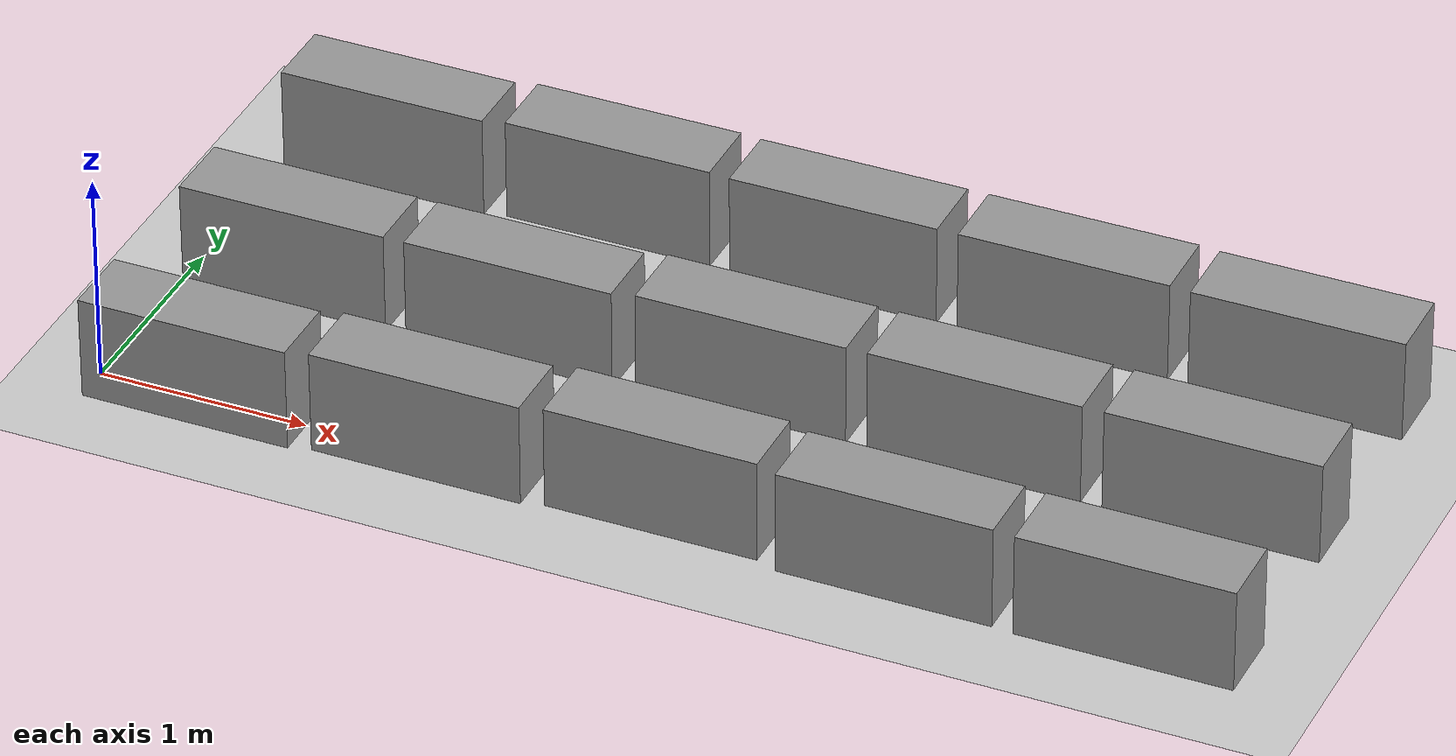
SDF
<sdf version="1.7">
 <world name="default">
  <model name="ground_plane">
   <static>1</static>
   <link name="link">
    <collision name="collision">
     <geometry><plane><normal>0 0 1</normal><size>100 100</size></plane></geometry>
     <surface>
      <contact><collide_bitmask>65535</collide_bitmask></contact>
      <friction><ode><mu>100</mu><mu2>50</mu2></ode></friction>
     </surface>
    </collision>
    <visual name="visual">
     <cast_shadows>0</cast_shadows>
     <geometry><plane><normal>0 0 1</normal><size>100 100</size></plane></geometry>
     <material>
      <script><uri>file://media/materials/scripts/gazebo.material</uri><name>Gazebo/Grey</name></script>
     </material>
    </visual>
   </link>
  </model>
  <model name="obs_solarpanel_raw_0_6">
   <link name="link_0">
    <inertial>
     <mass>1</mass>
     <inertia>
      <ixx>0.166667</ixx>
      <ixy>0</ixy>
      <ixz>0</ixz>
      <iyy>0.166667</iyy>
      <iyz>0</iyz>
      <izz>0.166667</izz>
     </inertia>
    </inertial>
    <visual name="visual">
     <geometry><box><size>1 0.35 0.5</size></box></geometry>
     <material>
      <lighting>1</lighting>
      <script><uri>file://media/materials/scripts/gazebo.material</uri><name>Gazebo/Grey</name></script>
      <shader type="pixel"><normal_map>__default__</normal_map></shader>
      <ambient>0.3 0.3 0.3 1</ambient>
      <diffuse>0.7 0.7 0.7 1</diffuse>
      <specular>0.01 0.01 0.01 1</specular>
      <emissive>0 0 0 1</emissive>
     </material>
    </visual>
    <collision name="collision">
     <geometry><box><size>1 0.32 0.5</size></box></geometry>
     <surface>
      <friction>
       <ode><mu>10</mu><mu2>10</mu2><fdir1>0 0 0</fdir1><slip1>0</slip1><slip2>0</slip2></ode>
       <torsional>
        <coefficient>1</coefficient>
        <patch_radius>0</patch_radius>
        <surface_radius>0</surface_radius>
        <use_patch_radius>1</use_patch_radius>
        <ode><slip>0</slip></ode>
       </torsional>
      </friction>
      <bounce><restitution_coefficient>0</restitution_coefficient><threshold>1e+06</threshold></bounce>
      <contact>
       <collide_without_contact>0</collide_without_contact>
       <collide_without_contact_bitmask>1</collide_without_contact_bitmask>
       <collide_bitmask>1</collide_bitmask>
       <ode>
        <soft_cfm>0</soft_cfm>
        <soft_erp>0.2</soft_erp>
        <kp>1e+13</kp>
        <kd>1</kd>
        <max_vel>0</max_vel>
        <min_depth>0</min_depth>
       </ode>
       <bullet>
        <split_impulse>1</split_impulse>
        <split_impulse_penetration_threshold>-0.01</split_impulse_penetration_threshold>
        <soft_cfm>0</soft_cfm>
        <soft_erp>0.2</soft_erp>
        <kp>1e+13</kp>
        <kd>1</kd>
       </bullet>
      </contact>
     </surface>
    </collision>
   </link>
   <static>1</static>
   <pose>0.5 1.99 0.25 0 -0 0</pose>
  </model>
  <model name="obs_solarpanel_raw_0_7">
   <link name="link_0">
    <inertial>
     <mass>1</mass>
     <inertia>
      <ixx>0.166667</ixx>
      <ixy>0</ixy>
      <ixz>0</ixz>
      <iyy>0.166667</iyy>
      <iyz>0</iyz>
      <izz>0.166667</izz>
     </inertia>
    </inertial>
    <visual name="visual">
     <geometry><box><size>1 0.35 0.5</size></box></geometry>
     <material>
      <lighting>1</lighting>
      <script><uri>file://media/materials/scripts/gazebo.material</uri><name>Gazebo/Grey</name></script>
      <shader type="pixel"><normal_map>__default__</normal_map></shader>
      <ambient>0.3 0.3 0.3 1</ambient>
      <diffuse>0.7 0.7 0.7 1</diffuse>
      <specular>0.01 0.01 0.01 1</specular>
      <emissive>0 0 0 1</emissive>
     </material>
    </visual>
    <collision name="collision">
     <geometry><box><size>1 0.32 0.5</size></box></geometry>
     <surface>
      <friction>
       <ode><mu>10</mu><mu2>10</mu2><fdir1>0 0 0</fdir1><slip1>0</slip1><slip2>0</slip2></ode>
       <torsional>
        <coefficient>1</coefficient>
        <patch_radius>0</patch_radius>
        <surface_radius>0</surface_radius>
        <use_patch_radius>1</use_patch_radius>
        <ode><slip>0</slip></ode>
       </torsional>
      </friction>
      <bounce><restitution_coefficient>0</restitution_coefficient><threshold>1e+06</threshold></bounce>
      <contact>
       <collide_without_contact>0</collide_without_contact>
       <collide_without_contact_bitmask>1</collide_without_contact_bitmask>
       <collide_bitmask>1</collide_bitmask>
       <ode>
        <soft_cfm>0</soft_cfm>
        <soft_erp>0.2</soft_erp>
        <kp>1e+13</kp>
        <kd>1</kd>
        <max_vel>0</max_vel>
        <min_depth>0</min_depth>
       </ode>
       <bullet>
        <split_impulse>1</split_impulse>
        <split_impulse_penetration_threshold>-0.01</split_impulse_penetration_threshold>
        <soft_cfm>0</soft_cfm>
        <soft_erp>0.2</soft_erp>
        <kp>1e+13</kp>
        <kd>1</kd>
       </bullet>
      </contact>
     </surface>
    </collision>
   </link>
   <static>1</static>
   <pose>1.6 2.02 0.25 0 -0 0</pose>
  </model>
  <model name="obs_solarpanel_raw_0_8">
   <link name="link_0">
    <inertial>
     <mass>1</mass>
     <inertia>
      <ixx>0.166667</ixx>
      <ixy>0</ixy>
      <ixz>0</ixz>
      <iyy>0.166667</iyy>
      <iyz>0</iyz>
      <izz>0.166667</izz>
     </inertia>
    </inertial>
    <visual name="visual">
     <geometry><box><size>1 0.35 0.5</size></box></geometry>
     <material>
      <lighting>1</lighting>
      <script><uri>file://media/materials/scripts/gazebo.material</uri><name>Gazebo/Grey</name></script>
      <shader type="pixel"><normal_map>__default__</normal_map></shader>
      <ambient>0.3 0.3 0.3 1</ambient>
      <diffuse>0.7 0.7 0.7 1</diffuse>
      <specular>0.01 0.01 0.01 1</specular>
      <emissive>0 0 0 1</emissive>
     </material>
    </visual>
    <collision name="collision">
     <geometry><box><size>1 0.32 0.5</size></box></geometry>
     <surface>
      <friction>
       <ode><mu>10</mu><mu2>10</mu2><fdir1>0 0 0</fdir1><slip1>0</slip1><slip2>0</slip2></ode>
       <torsional>
        <coefficient>1</coefficient>
        <patch_radius>0</patch_radius>
        <surface_radius>0</surface_radius>
        <use_patch_radius>1</use_patch_radius>
        <ode><slip>0</slip></ode>
       </torsional>
      </friction>
      <bounce><restitution_coefficient>0</restitution_coefficient><threshold>1e+06</threshold></bounce>
      <contact>
       <collide_without_contact>0</collide_without_contact>
       <collide_without_contact_bitmask>1</collide_without_contact_bitmask>
       <collide_bitmask>1</collide_bitmask>
       <ode>
        <soft_cfm>0</soft_cfm>
        <soft_erp>0.2</soft_erp>
        <kp>1e+13</kp>
        <kd>1</kd>
        <max_vel>0</max_vel>
        <min_depth>0</min_depth>
       </ode>
       <bullet>
        <split_impulse>1</split_impulse>
        <split_impulse_penetration_threshold>-0.01</split_impulse_penetration_threshold>
        <soft_cfm>0</soft_cfm>
        <soft_erp>0.2</soft_erp>
        <kp>1e+13</kp>
        <kd>1</kd>
       </bullet>
      </contact>
     </surface>
    </collision>
   </link>
   <static>1</static>
   <pose>2.7 2.01 0.25 0 -0 0</pose>
  </model>
  <model name="obs_solarpanel_raw_0_9">
   <link name="link_0">
    <inertial>
     <mass>1</mass>
     <inertia>
      <ixx>0.166667</ixx>
      <ixy>0</ixy>
      <ixz>0</ixz>
      <iyy>0.166667</iyy>
      <iyz>0</iyz>
      <izz>0.166667</izz>
     </inertia>
    </inertial>
    <visual name="visual">
     <geometry><box><size>1 0.35 0.5</size></box></geometry>
     <material>
      <lighting>1</lighting>
      <script><uri>file://media/materials/scripts/gazebo.material</uri><name>Gazebo/Grey</name></script>
      <shader type="pixel"><normal_map>__default__</normal_map></shader>
      <ambient>0.3 0.3 0.3 1</ambient>
      <diffuse>0.7 0.7 0.7 1</diffuse>
      <specular>0.01 0.01 0.01 1</specular>
      <emissive>0 0 0 1</emissive>
     </material>
    </visual>
    <collision name="collision">
     <geometry><box><size>1 0.32 0.5</size></box></geometry>
     <surface>
      <friction>
       <ode><mu>10</mu><mu2>10</mu2><fdir1>0 0 0</fdir1><slip1>0</slip1><slip2>0</slip2></ode>
       <torsional>
        <coefficient>1</coefficient>
        <patch_radius>0</patch_radius>
        <surface_radius>0</surface_radius>
        <use_patch_radius>1</use_patch_radius>
        <ode><slip>0</slip></ode>
       </torsional>
      </friction>
      <bounce><restitution_coefficient>0</restitution_coefficient><threshold>1e+06</threshold></bounce>
      <contact>
       <collide_without_contact>0</collide_without_contact>
       <collide_without_contact_bitmask>1</collide_without_contact_bitmask>
       <collide_bitmask>1</collide_bitmask>
       <ode>
        <soft_cfm>0</soft_cfm>
        <soft_erp>0.2</soft_erp>
        <kp>1e+13</kp>
        <kd>1</kd>
        <max_vel>0</max_vel>
        <min_depth>0</min_depth>
       </ode>
       <bullet>
        <split_impulse>1</split_impulse>
        <split_impulse_penetration_threshold>-0.01</split_impulse_penetration_threshold>
        <soft_cfm>0</soft_cfm>
        <soft_erp>0.2</soft_erp>
        <kp>1e+13</kp>
        <kd>1</kd>
       </bullet>
      </contact>
     </surface>
    </collision>
   </link>
   <static>1</static>
   <pose>3.8 2.01 0.25 0 -0 0</pose>
  </model>
  <model name="obs_solarpanel_raw_0_10">
   <link name="link_0">
    <inertial>
     <mass>1</mass>
     <inertia>
      <ixx>0.166667</ixx>
      <ixy>0</ixy>
      <ixz>0</ixz>
      <iyy>0.166667</iyy>
      <iyz>0</iyz>
      <izz>0.166667</izz>
     </inertia>
    </inertial>
    <visual name="visual">
     <geometry><box><size>1 0.35 0.5</size></box></geometry>
     <material>
      <lighting>1</lighting>
      <script><uri>file://media/materials/scripts/gazebo.material</uri><name>Gazebo/Grey</name></script>
      <shader type="pixel"><normal_map>__default__</normal_map></shader>
      <ambient>0.3 0.3 0.3 1</ambient>
      <diffuse>0.7 0.7 0.7 1</diffuse>
      <specular>0.01 0.01 0.01 1</specular>
      <emissive>0 0 0 1</emissive>
     </material>
    </visual>
    <collision name="collision">
     <geometry><box><size>1 0.32 0.5</size></box></geometry>
     <surface>
      <friction>
       <ode><mu>10</mu><mu2>10</mu2><fdir1>0 0 0</fdir1><slip1>0</slip1><slip2>0</slip2></ode>
       <torsional>
        <coefficient>1</coefficient>
        <patch_radius>0</patch_radius>
        <surface_radius>0</surface_radius>
        <use_patch_radius>1</use_patch_radius>
        <ode><slip>0</slip></ode>
       </torsional>
      </friction>
      <bounce><restitution_coefficient>0</restitution_coefficient><threshold>1e+06</threshold></bounce>
      <contact>
       <collide_without_contact>0</collide_without_contact>
       <collide_without_contact_bitmask>1</collide_without_contact_bitmask>
       <collide_bitmask>1</collide_bitmask>
       <ode>
        <soft_cfm>0</soft_cfm>
        <soft_erp>0.2</soft_erp>
        <kp>1e+13</kp>
        <kd>1</kd>
        <max_vel>0</max_vel>
        <min_depth>0</min_depth>
       </ode>
       <bullet>
        <split_impulse>1</split_impulse>
        <split_impulse_penetration_threshold>-0.01</split_impulse_penetration_threshold>
        <soft_cfm>0</soft_cfm>
        <soft_erp>0.2</soft_erp>
        <kp>1e+13</kp>
        <kd>1</kd>
       </bullet>
      </contact>
     </surface>
    </collision>
   </link>
   <static>1</static>
   <pose>4.9 2 0.25 0 -0 0</pose>
  </model>
  <model name="obs_solarpanel_raw_1_6">
   <link name="link_0">
    <inertial>
     <mass>1</mass>
     <inertia>
      <ixx>0.166667</ixx>
      <ixy>0</ixy>
      <ixz>0</ixz>
      <iyy>0.166667</iyy>
      <iyz>0</iyz>
      <izz>0.166667</izz>
     </inertia>
    </inertial>
    <visual name="visual">
     <geometry><box><size>1 0.35 0.5</size></box></geometry>
     <material>
      <lighting>1</lighting>
      <script><uri>file://media/materials/scripts/gazebo.material</uri><name>Gazebo/Grey</name></script>
      <shader type="pixel"><normal_map>__default__</normal_map></shader>
      <ambient>0.3 0.3 0.3 1</ambient>
      <diffuse>0.7 0.7 0.7 1</diffuse>
      <specular>0.01 0.01 0.01 1</specular>
      <emissive>0 0 0 1</emissive>
     </material>
    </visual>
    <collision name="collision">
     <geometry><box><size>1 0.32 0.5</size></box></geometry>
     <surface>
      <friction>
       <ode><mu>10</mu><mu2>10</mu2><fdir1>0 0 0</fdir1><slip1>0</slip1><slip2>0</slip2></ode>
       <torsional>
        <coefficient>1</coefficient>
        <patch_radius>0</patch_radius>
        <surface_radius>0</surface_radius>
        <use_patch_radius>1</use_patch_radius>
        <ode><slip>0</slip></ode>
       </torsional>
      </friction>
      <bounce><restitution_coefficient>0</restitution_coefficient><threshold>1e+06</threshold></bounce>
      <contact>
       <collide_without_contact>0</collide_without_contact>
       <collide_without_contact_bitmask>1</collide_without_contact_bitmask>
       <collide_bitmask>1</collide_bitmask>
       <ode>
        <soft_cfm>0</soft_cfm>
        <soft_erp>0.2</soft_erp>
        <kp>1e+13</kp>
        <kd>1</kd>
        <max_vel>0</max_vel>
        <min_depth>0</min_depth>
       </ode>
       <bullet>
        <split_impulse>1</split_impulse>
        <split_impulse_penetration_threshold>-0.01</split_impulse_penetration_threshold>
        <soft_cfm>0</soft_cfm>
        <soft_erp>0.2</soft_erp>
        <kp>1e+13</kp>
        <kd>1</kd>
       </bullet>
      </contact>
     </surface>
    </collision>
   </link>
   <static>1</static>
   <pose>0.5 0.97 0.25 0 -0 0</pose>
  </model>
  <model name="obs_solarpanel_raw_1_7">
   <link name="link_0">
    <inertial>
     <mass>1</mass>
     <inertia>
      <ixx>0.166667</ixx>
      <ixy>0</ixy>
      <ixz>0</ixz>
      <iyy>0.166667</iyy>
      <iyz>0</iyz>
      <izz>0.166667</izz>
     </inertia>
    </inertial>
    <visual name="visual">
     <geometry><box><size>1 0.35 0.5</size></box></geometry>
     <material>
      <lighting>1</lighting>
      <script><uri>file://media/materials/scripts/gazebo.material</uri><name>Gazebo/Grey</name></script>
      <shader type="pixel"><normal_map>__default__</normal_map></shader>
      <ambient>0.3 0.3 0.3 1</ambient>
      <diffuse>0.7 0.7 0.7 1</diffuse>
      <specular>0.01 0.01 0.01 1</specular>
      <emissive>0 0 0 1</emissive>
     </material>
    </visual>
    <collision name="collision">
     <geometry><box><size>1 0.32 0.5</size></box></geometry>
     <surface>
      <friction>
       <ode><mu>10</mu><mu2>10</mu2><fdir1>0 0 0</fdir1><slip1>0</slip1><slip2>0</slip2></ode>
       <torsional>
        <coefficient>1</coefficient>
        <patch_radius>0</patch_radius>
        <surface_radius>0</surface_radius>
        <use_patch_radius>1</use_patch_radius>
        <ode><slip>0</slip></ode>
       </torsional>
      </friction>
      <bounce><restitution_coefficient>0</restitution_coefficient><threshold>1e+06</threshold></bounce>
      <contact>
       <collide_without_contact>0</collide_without_contact>
       <collide_without_contact_bitmask>1</collide_without_contact_bitmask>
       <collide_bitmask>1</collide_bitmask>
       <ode>
        <soft_cfm>0</soft_cfm>
        <soft_erp>0.2</soft_erp>
        <kp>1e+13</kp>
        <kd>1</kd>
        <max_vel>0</max_vel>
        <min_depth>0</min_depth>
       </ode>
       <bullet>
        <split_impulse>1</split_impulse>
        <split_impulse_penetration_threshold>-0.01</split_impulse_penetration_threshold>
        <soft_cfm>0</soft_cfm>
        <soft_erp>0.2</soft_erp>
        <kp>1e+13</kp>
        <kd>1</kd>
       </bullet>
      </contact>
     </surface>
    </collision>
   </link>
   <static>1</static>
   <pose>1.6 0.97 0.25 0 -0 0</pose>
  </model>
  <model name="obs_solarpanel_raw_1_8">
   <link name="link_0">
    <inertial>
     <mass>1</mass>
     <inertia>
      <ixx>0.166667</ixx>
      <ixy>0</ixy>
      <ixz>0</ixz>
      <iyy>0.166667</iyy>
      <iyz>0</iyz>
      <izz>0.166667</izz>
     </inertia>
    </inertial>
    <visual name="visual">
     <geometry><box><size>1 0.35 0.5</size></box></geometry>
     <material>
      <lighting>1</lighting>
      <script><uri>file://media/materials/scripts/gazebo.material</uri><name>Gazebo/Grey</name></script>
      <shader type="pixel"><normal_map>__default__</normal_map></shader>
      <ambient>0.3 0.3 0.3 1</ambient>
      <diffuse>0.7 0.7 0.7 1</diffuse>
      <specular>0.01 0.01 0.01 1</specular>
      <emissive>0 0 0 1</emissive>
     </material>
    </visual>
    <collision name="collision">
     <geometry><box><size>1 0.32 0.5</size></box></geometry>
     <surface>
      <friction>
       <ode><mu>10</mu><mu2>10</mu2><fdir1>0 0 0</fdir1><slip1>0</slip1><slip2>0</slip2></ode>
       <torsional>
        <coefficient>1</coefficient>
        <patch_radius>0</patch_radius>
        <surface_radius>0</surface_radius>
        <use_patch_radius>1</use_patch_radius>
        <ode><slip>0</slip></ode>
       </torsional>
      </friction>
      <bounce><restitution_coefficient>0</restitution_coefficient><threshold>1e+06</threshold></bounce>
      <contact>
       <collide_without_contact>0</collide_without_contact>
       <collide_without_contact_bitmask>1</collide_without_contact_bitmask>
       <collide_bitmask>1</collide_bitmask>
       <ode>
        <soft_cfm>0</soft_cfm>
        <soft_erp>0.2</soft_erp>
        <kp>1e+13</kp>
        <kd>1</kd>
        <max_vel>0</max_vel>
        <min_depth>0</min_depth>
       </ode>
       <bullet>
        <split_impulse>1</split_impulse>
        <split_impulse_penetration_threshold>-0.01</split_impulse_penetration_threshold>
        <soft_cfm>0</soft_cfm>
        <soft_erp>0.2</soft_erp>
        <kp>1e+13</kp>
        <kd>1</kd>
       </bullet>
      </contact>
     </surface>
    </collision>
   </link>
   <static>1</static>
   <pose>2.7 1 0.25 0 -0 0</pose>
  </model>
  <model name="obs_solarpanel_raw_1_9">
   <link name="link_0">
    <inertial>
     <mass>1</mass>
     <inertia>
      <ixx>0.166667</ixx>
      <ixy>0</ixy>
      <ixz>0</ixz>
      <iyy>0.166667</iyy>
      <iyz>0</iyz>
      <izz>0.166667</izz>
     </inertia>
    </inertial>
    <visual name="visual">
     <geometry><box><size>1 0.35 0.5</size></box></geometry>
     <material>
      <lighting>1</lighting>
      <script><uri>file://media/materials/scripts/gazebo.material</uri><name>Gazebo/Grey</name></script>
      <shader type="pixel"><normal_map>__default__</normal_map></shader>
      <ambient>0.3 0.3 0.3 1</ambient>
      <diffuse>0.7 0.7 0.7 1</diffuse>
      <specular>0.01 0.01 0.01 1</specular>
      <emissive>0 0 0 1</emissive>
     </material>
    </visual>
    <collision name="collision">
     <geometry><box><size>1 0.32 0.5</size></box></geometry>
     <surface>
      <friction>
       <ode><mu>10</mu><mu2>10</mu2><fdir1>0 0 0</fdir1><slip1>0</slip1><slip2>0</slip2></ode>
       <torsional>
        <coefficient>1</coefficient>
        <patch_radius>0</patch_radius>
        <surface_radius>0</surface_radius>
        <use_patch_radius>1</use_patch_radius>
        <ode><slip>0</slip></ode>
       </torsional>
      </friction>
      <bounce><restitution_coefficient>0</restitution_coefficient><threshold>1e+06</threshold></bounce>
      <contact>
       <collide_without_contact>0</collide_without_contact>
       <collide_without_contact_bitmask>1</collide_without_contact_bitmask>
       <collide_bitmask>1</collide_bitmask>
       <ode>
        <soft_cfm>0</soft_cfm>
        <soft_erp>0.2</soft_erp>
        <kp>1e+13</kp>
        <kd>1</kd>
        <max_vel>0</max_vel>
        <min_depth>0</min_depth>
       </ode>
       <bullet>
        <split_impulse>1</split_impulse>
        <split_impulse_penetration_threshold>-0.01</split_impulse_penetration_threshold>
        <soft_cfm>0</soft_cfm>
        <soft_erp>0.2</soft_erp>
        <kp>1e+13</kp>
        <kd>1</kd>
       </bullet>
      </contact>
     </surface>
    </collision>
   </link>
   <static>1</static>
   <pose>3.8 1 0.25 0 -0 0</pose>
  </model>
  <model name="obs_solarpanel_raw_1_10">
   <link name="link_0">
    <inertial>
     <mass>1</mass>
     <inertia>
      <ixx>0.166667</ixx>
      <ixy>0</ixy>
      <ixz>0</ixz>
      <iyy>0.166667</iyy>
      <iyz>0</iyz>
      <izz>0.166667</izz>
     </inertia>
    </inertial>
    <visual name="visual">
     <geometry><box><size>1 0.35 0.5</size></box></geometry>
     <material>
      <lighting>1</lighting>
      <script><uri>file://media/materials/scripts/gazebo.material</uri><name>Gazebo/Grey</name></script>
      <shader type="pixel"><normal_map>__default__</normal_map></shader>
      <ambient>0.3 0.3 0.3 1</ambient>
      <diffuse>0.7 0.7 0.7 1</diffuse>
      <specular>0.01 0.01 0.01 1</specular>
      <emissive>0 0 0 1</emissive>
     </material>
    </visual>
    <collision name="collision">
     <geometry><box><size>1 0.32 0.5</size></box></geometry>
     <surface>
      <friction>
       <ode><mu>10</mu><mu2>10</mu2><fdir1>0 0 0</fdir1><slip1>0</slip1><slip2>0</slip2></ode>
       <torsional>
        <coefficient>1</coefficient>
        <patch_radius>0</patch_radius>
        <surface_radius>0</surface_radius>
        <use_patch_radius>1</use_patch_radius>
        <ode><slip>0</slip></ode>
       </torsional>
      </friction>
      <bounce><restitution_coefficient>0</restitution_coefficient><threshold>1e+06</threshold></bounce>
      <contact>
       <collide_without_contact>0</collide_without_contact>
       <collide_without_contact_bitmask>1</collide_without_contact_bitmask>
       <collide_bitmask>1</collide_bitmask>
       <ode>
        <soft_cfm>0</soft_cfm>
        <soft_erp>0.2</soft_erp>
        <kp>1e+13</kp>
        <kd>1</kd>
        <max_vel>0</max_vel>
        <min_depth>0</min_depth>
       </ode>
       <bullet>
        <split_impulse>1</split_impulse>
        <split_impulse_penetration_threshold>-0.01</split_impulse_penetration_threshold>
        <soft_cfm>0</soft_cfm>
        <soft_erp>0.2</soft_erp>
        <kp>1e+13</kp>
        <kd>1</kd>
       </bullet>
      </contact>
     </surface>
    </collision>
   </link>
   <static>1</static>
   <pose>4.9 1 0.25 0 -0 0</pose>
  </model>
  <model name="obs_solarpanel_raw_2_6">
   <link name="link_0">
    <inertial>
     <mass>1</mass>
     <inertia>
      <ixx>0.166667</ixx>
      <ixy>0</ixy>
      <ixz>0</ixz>
      <iyy>0.166667</iyy>
      <iyz>0</iyz>
      <izz>0.166667</izz>
     </inertia>
    </inertial>
    <visual name="visual">
     <geometry><box><size>1 0.35 0.5</size></box></geometry>
     <material>
      <lighting>1</lighting>
      <script><uri>file://media/materials/scripts/gazebo.material</uri><name>Gazebo/Grey</name></script>
      <shader type="pixel"><normal_map>__default__</normal_map></shader>
      <ambient>0.3 0.3 0.3 1</ambient>
      <diffuse>0.7 0.7 0.7 1</diffuse>
      <specular>0.01 0.01 0.01 1</specular>
      <emissive>0 0 0 1</emissive>
     </material>
    </visual>
    <collision name="collision">
     <geometry><box><size>1 0.32 0.5</size></box></geometry>
     <surface>
      <friction>
       <ode><mu>10</mu><mu2>10</mu2><fdir1>0 0 0</fdir1><slip1>0</slip1><slip2>0</slip2></ode>
       <torsional>
        <coefficient>1</coefficient>
        <patch_radius>0</patch_radius>
        <surface_radius>0</surface_radius>
        <use_patch_radius>1</use_patch_radius>
        <ode><slip>0</slip></ode>
       </torsional>
      </friction>
      <bounce><restitution_coefficient>0</restitution_coefficient><threshold>1e+06</threshold></bounce>
      <contact>
       <collide_without_contact>0</collide_without_contact>
       <collide_without_contact_bitmask>1</collide_without_contact_bitmask>
       <collide_bitmask>1</collide_bitmask>
       <ode>
        <soft_cfm>0</soft_cfm>
        <soft_erp>0.2</soft_erp>
        <kp>1e+13</kp>
        <kd>1</kd>
        <max_vel>0</max_vel>
        <min_depth>0</min_depth>
       </ode>
       <bullet>
        <split_impulse>1</split_impulse>
        <split_impulse_penetration_threshold>-0.01</split_impulse_penetration_threshold>
        <soft_cfm>0</soft_cfm>
        <soft_erp>0.2</soft_erp>
        <kp>1e+13</kp>
        <kd>1</kd>
       </bullet>
      </contact>
     </surface>
    </collision>
   </link>
   <static>1</static>
   <pose>0.5 -0.01 0.25 0 -0 0</pose>
  </model>
  <model name="obs_solarpanel_raw_2_7">
   <link name="link_0">
    <inertial>
     <mass>1</mass>
     <inertia>
      <ixx>0.166667</ixx>
      <ixy>0</ixy>
      <ixz>0</ixz>
      <iyy>0.166667</iyy>
      <iyz>0</iyz>
      <izz>0.166667</izz>
     </inertia>
    </inertial>
    <visual name="visual">
     <geometry><box><size>1 0.35 0.5</size></box></geometry>
     <material>
      <lighting>1</lighting>
      <script><uri>file://media/materials/scripts/gazebo.material</uri><name>Gazebo/Grey</name></script>
      <shader type="pixel"><normal_map>__default__</normal_map></shader>
      <ambient>0.3 0.3 0.3 1</ambient>
      <diffuse>0.7 0.7 0.7 1</diffuse>
      <specular>0.01 0.01 0.01 1</specular>
      <emissive>0 0 0 1</emissive>
     </material>
    </visual>
    <collision name="collision">
     <geometry><box><size>1 0.32 0.5</size></box></geometry>
     <surface>
      <friction>
       <ode><mu>10</mu><mu2>10</mu2><fdir1>0 0 0</fdir1><slip1>0</slip1><slip2>0</slip2></ode>
       <torsional>
        <coefficient>1</coefficient>
        <patch_radius>0</patch_radius>
        <surface_radius>0</surface_radius>
        <use_patch_radius>1</use_patch_radius>
        <ode><slip>0</slip></ode>
       </torsional>
      </friction>
      <bounce><restitution_coefficient>0</restitution_coefficient><threshold>1e+06</threshold></bounce>
      <contact>
       <collide_without_contact>0</collide_without_contact>
       <collide_without_contact_bitmask>1</collide_without_contact_bitmask>
       <collide_bitmask>1</collide_bitmask>
       <ode>
        <soft_cfm>0</soft_cfm>
        <soft_erp>0.2</soft_erp>
        <kp>1e+13</kp>
        <kd>1</kd>
        <max_vel>0</max_vel>
        <min_depth>0</min_depth>
       </ode>
       <bullet>
        <split_impulse>1</split_impulse>
        <split_impulse_penetration_threshold>-0.01</split_impulse_penetration_threshold>
        <soft_cfm>0</soft_cfm>
        <soft_erp>0.2</soft_erp>
        <kp>1e+13</kp>
        <kd>1</kd>
       </bullet>
      </contact>
     </surface>
    </collision>
   </link>
   <static>1</static>
   <pose>1.6 0.02 0.25 0 -0 0</pose>
  </model>
  <model name="obs_solarpanel_raw_2_8">
   <link name="link_0">
    <inertial>
     <mass>1</mass>
     <inertia>
      <ixx>0.166667</ixx>
      <ixy>0</ixy>
      <ixz>0</ixz>
      <iyy>0.166667</iyy>
      <iyz>0</iyz>
      <izz>0.166667</izz>
     </inertia>
    </inertial>
    <visual name="visual">
     <geometry><box><size>1 0.35 0.5</size></box></geometry>
     <material>
      <lighting>1</lighting>
      <script><uri>file://media/materials/scripts/gazebo.material</uri><name>Gazebo/Grey</name></script>
      <shader type="pixel"><normal_map>__default__</normal_map></shader>
      <ambient>0.3 0.3 0.3 1</ambient>
      <diffuse>0.7 0.7 0.7 1</diffuse>
      <specular>0.01 0.01 0.01 1</specular>
      <emissive>0 0 0 1</emissive>
     </material>
    </visual>
    <collision name="collision">
     <geometry><box><size>1 0.32 0.5</size></box></geometry>
     <surface>
      <friction>
       <ode><mu>10</mu><mu2>10</mu2><fdir1>0 0 0</fdir1><slip1>0</slip1><slip2>0</slip2></ode>
       <torsional>
        <coefficient>1</coefficient>
        <patch_radius>0</patch_radius>
        <surface_radius>0</surface_radius>
        <use_patch_radius>1</use_patch_radius>
        <ode><slip>0</slip></ode>
       </torsional>
      </friction>
      <bounce><restitution_coefficient>0</restitution_coefficient><threshold>1e+06</threshold></bounce>
      <contact>
       <collide_without_contact>0</collide_without_contact>
       <collide_without_contact_bitmask>1</collide_without_contact_bitmask>
       <collide_bitmask>1</collide_bitmask>
       <ode>
        <soft_cfm>0</soft_cfm>
        <soft_erp>0.2</soft_erp>
        <kp>1e+13</kp>
        <kd>1</kd>
        <max_vel>0</max_vel>
        <min_depth>0</min_depth>
       </ode>
       <bullet>
        <split_impulse>1</split_impulse>
        <split_impulse_penetration_threshold>-0.01</split_impulse_penetration_threshold>
        <soft_cfm>0</soft_cfm>
        <soft_erp>0.2</soft_erp>
        <kp>1e+13</kp>
        <kd>1</kd>
       </bullet>
      </contact>
     </surface>
    </collision>
   </link>
   <static>1</static>
   <pose>2.7 0.05 0.25 0 -0 0</pose>
  </model>
  <model name="obs_solarpanel_raw_2_9">
   <link name="link_0">
    <inertial>
     <mass>1</mass>
     <inertia>
      <ixx>0.166667</ixx>
      <ixy>0</ixy>
      <ixz>0</ixz>
      <iyy>0.166667</iyy>
      <iyz>0</iyz>
      <izz>0.166667</izz>
     </inertia>
    </inertial>
    <visual name="visual">
     <geometry><box><size>1 0.35 0.5</size></box></geometry>
     <material>
      <lighting>1</lighting>
      <script><uri>file://media/materials/scripts/gazebo.material</uri><name>Gazebo/Grey</name></script>
      <shader type="pixel"><normal_map>__default__</normal_map></shader>
      <ambient>0.3 0.3 0.3 1</ambient>
      <diffuse>0.7 0.7 0.7 1</diffuse>
      <specular>0.01 0.01 0.01 1</specular>
      <emissive>0 0 0 1</emissive>
     </material>
    </visual>
    <collision name="collision">
     <geometry><box><size>1 0.32 0.5</size></box></geometry>
     <surface>
      <friction>
       <ode><mu>10</mu><mu2>10</mu2><fdir1>0 0 0</fdir1><slip1>0</slip1><slip2>0</slip2></ode>
       <torsional>
        <coefficient>1</coefficient>
        <patch_radius>0</patch_radius>
        <surface_radius>0</surface_radius>
        <use_patch_radius>1</use_patch_radius>
        <ode><slip>0</slip></ode>
       </torsional>
      </friction>
      <bounce><restitution_coefficient>0</restitution_coefficient><threshold>1e+06</threshold></bounce>
      <contact>
       <collide_without_contact>0</collide_without_contact>
       <collide_without_contact_bitmask>1</collide_without_contact_bitmask>
       <collide_bitmask>1</collide_bitmask>
       <ode>
        <soft_cfm>0</soft_cfm>
        <soft_erp>0.2</soft_erp>
        <kp>1e+13</kp>
        <kd>1</kd>
        <max_vel>0</max_vel>
        <min_depth>0</min_depth>
       </ode>
       <bullet>
        <split_impulse>1</split_impulse>
        <split_impulse_penetration_threshold>-0.01</split_impulse_penetration_threshold>
        <soft_cfm>0</soft_cfm>
        <soft_erp>0.2</soft_erp>
        <kp>1e+13</kp>
        <kd>1</kd>
       </bullet>
      </contact>
     </surface>
    </collision>
   </link>
   <static>1</static>
   <pose>3.8 0.01 0.25 0 -0 0</pose>
  </model>
  <model name="obs_solarpanel_raw_2_10">
   <link name="link_0">
    <inertial>
     <mass>1</mass>
     <inertia>
      <ixx>0.166667</ixx>
      <ixy>0</ixy>
      <ixz>0</ixz>
      <iyy>0.166667</iyy>
      <iyz>0</iyz>
      <izz>0.166667</izz>
     </inertia>
    </inertial>
    <visual name="visual">
     <geometry><box><size>1 0.35 0.5</size></box></geometry>
     <material>
      <lighting>1</lighting>
      <script><uri>file://media/materials/scripts/gazebo.material</uri><name>Gazebo/Grey</name></script>
      <shader type="pixel"><normal_map>__default__</normal_map></shader>
      <ambient>0.3 0.3 0.3 1</ambient>
      <diffuse>0.7 0.7 0.7 1</diffuse>
      <specular>0.01 0.01 0.01 1</specular>
      <emissive>0 0 0 1</emissive>
     </material>
    </visual>
    <collision name="collision">
     <geometry><box><size>1 0.32 0.5</size></box></geometry>
     <surface>
      <friction>
       <ode><mu>10</mu><mu2>10</mu2><fdir1>0 0 0</fdir1><slip1>0</slip1><slip2>0</slip2></ode>
       <torsional>
        <coefficient>1</coefficient>
        <patch_radius>0</patch_radius>
        <surface_radius>0</surface_radius>
        <use_patch_radius>1</use_patch_radius>
        <ode><slip>0</slip></ode>
       </torsional>
      </friction>
      <bounce><restitution_coefficient>0</restitution_coefficient><threshold>1e+06</threshold></bounce>
      <contact>
       <collide_without_contact>0</collide_without_contact>
       <collide_without_contact_bitmask>1</collide_without_contact_bitmask>
       <collide_bitmask>1</collide_bitmask>
       <ode>
        <soft_cfm>0</soft_cfm>
        <soft_erp>0.2</soft_erp>
        <kp>1e+13</kp>
        <kd>1</kd>
        <max_vel>0</max_vel>
        <min_depth>0</min_depth>
       </ode>
       <bullet>
        <split_impulse>1</split_impulse>
        <split_impulse_penetration_threshold>-0.01</split_impulse_penetration_threshold>
        <soft_cfm>0</soft_cfm>
        <soft_erp>0.2</soft_erp>
        <kp>1e+13</kp>
        <kd>1</kd>
       </bullet>
      </contact>
     </surface>
    </collision>
   </link>
   <static>1</static>
   <pose>4.9 0 0.25 0 -0 0</pose>
  </model>
 </world>
</sdf>
